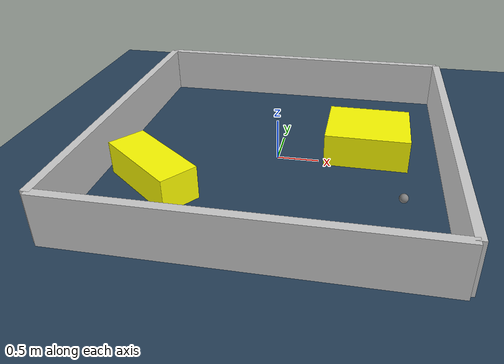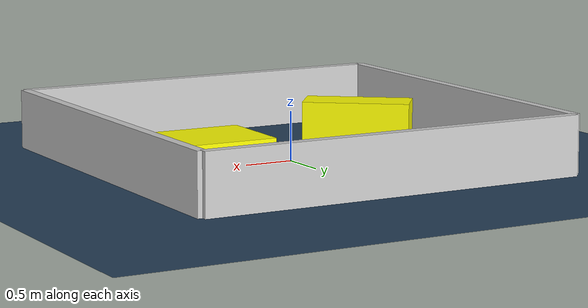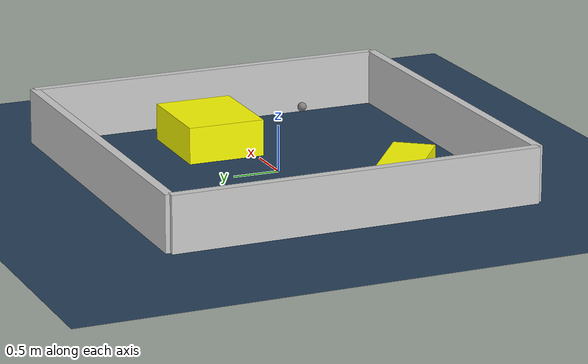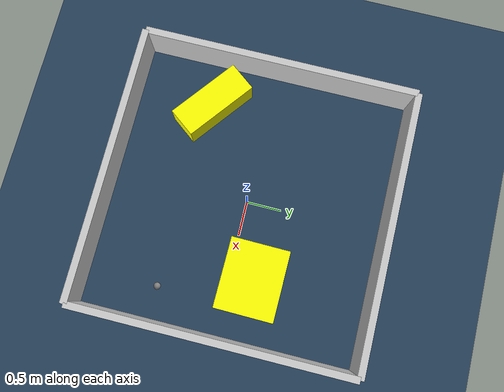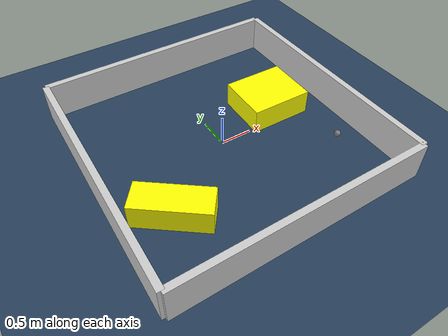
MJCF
<?xml version="1.0" ?>
<mujoco model="generated_environment">
  <option timestep="0.01" integrator="RK4" cone="elliptic"/>
  <default>
    <geom density="1"/>
  </default>
  <asset>
    <texture builtin="gradient" height="3072" rgb1="0.3 0.5 0.7" rgb2="0 0 0" type="skybox" width="512"/>
    <texture builtin="checker" height="300" mark="edge" markrgb="0.8 0.8 0.8" name="groundplane" rgb1="0.2 0.3 0.4" rgb2="0.1 0.2 0.3" type="2d" width="300"/>
    <material name="groundplane" reflectance="0.2" texrepeat="5 5" texture="groundplane" texuniform="true"/>
    <material name="robot" rgba="0.0 1.0 0.0 1"/>
  </asset>
  <worldbody>
    <light dir="0 0 -1" directional="true" pos="0 0 1.5"/>
    <geom condim="4" friction="1.0 0.005 0.001" material="groundplane" name="floor" size="0 0 0.05" type="plane"/>
    <body name="walls">
      <geom name="wall_1" condim="4" pos="-2.0 0.0 0.3" rgba="0.800000011920929 0.800000011920929 0.800000011920929 1.0" size="0.05 2.0 0.3" type="box"/>
      <geom name="wall_2" condim="4" pos="2.0 0.0 0.3" rgba="0.800000011920929 0.800000011920929 0.800000011920929 1.0" size="0.05 2.0 0.3" type="box"/>
      <geom name="wall_3" condim="4" pos="0.0 -2.0 0.3" rgba="0.800000011920929 0.800000011920929 0.800000011920929 1.0" size="2.0 0.05 0.3" type="box"/>
      <geom name="wall_4" condim="4" pos="0.0 2.0 0.3" rgba="0.800000011920929 0.800000011920929 0.800000011920929 1.0" size="2.0 0.05 0.3" type="box"/>
    </body>
    <body name="robot">
      <joint name="joint_x" type="slide" pos="0 0 0" axis="1 0 0"/>
      <joint name="joint_y" type="slide" pos="0 0 0" axis="0 1 0"/>
      <geom name="robot" type="sphere" pos="1.4787470813000825 -0.9215180673394487 0.2" size="0.05" mass="5." friction="1.0 0.005 0.0001" condim="4"/>
      <site name="sensor_ball"/>
    </body>
    <body name="obstacle_1_movable">
      <geom name="obstacle_1_movable" condim="4" pos="1.0791097797462665 0.33906639712837605 0.2" euler="0 0 359.25724522623574" friction="1.0 0.005 0.001" rgba="1 1 0 1" size="0.500811079444015 0.4213121880766302 0.2" type="box" mass="0.1"/>
      <joint type="free"/>
    </body>
    <body name="obstacle_2_movable">
      <geom name="obstacle_2_movable" condim="4" pos="-1.2796594921106108 -0.8368481681676748 0.2" euler="0 0 52.635719669717275" friction="1.0 0.005 0.001" rgba="1 1 0 1" size="0.22281046582837233 0.5622079847107745 0.2" type="box" mass="0.1"/>
      <joint type="free"/>
    </body>
  </worldbody>
  <actuator>
    <motor name="actuator_x" joint="joint_x" gear="1" ctrlrange="-1 1"/>
    <motor name="actuator_y" joint="joint_y" gear="1" ctrlrange="-1 1"/>
  </actuator>
</mujoco>
